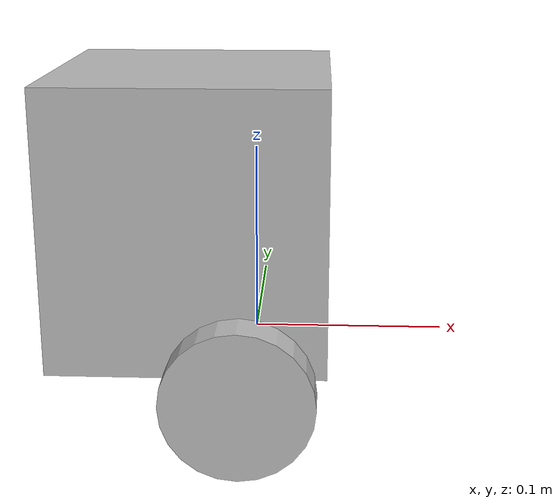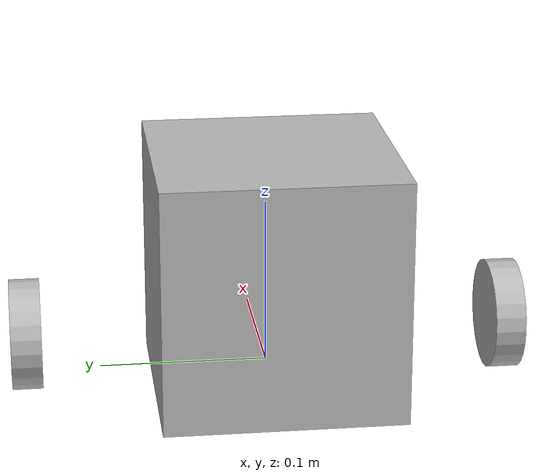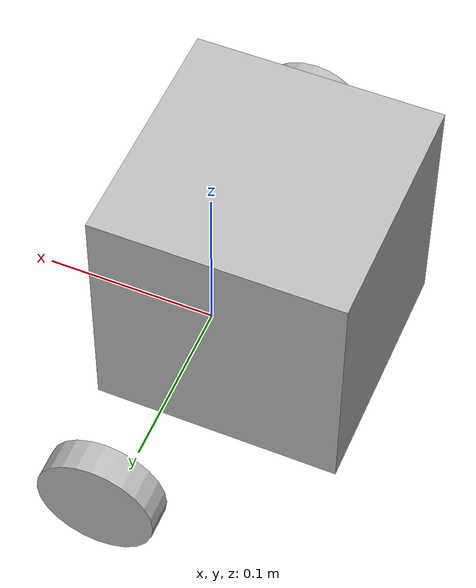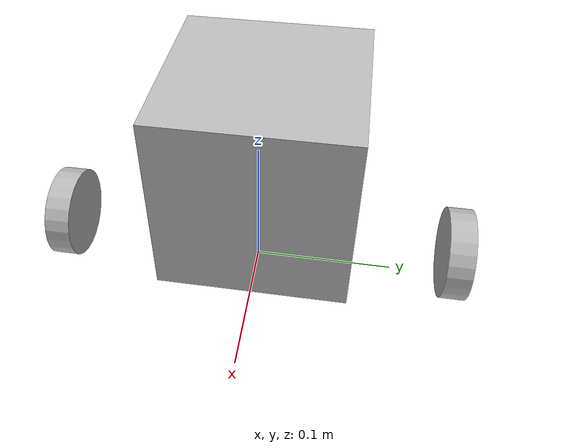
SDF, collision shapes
<?xml version="1.0" ?>
<sdf version="1.8">
  <model name="turtlebot3_waffle_pi">
    <pose>0 0 0.0 0 0 0</pose>

    <link name="base_footprint"/>

    <link name="base_link">
      <pose relative_to="base_footprint">0 0 0.0 0 0 0</pose>
      <inertial>
        <mass>1.3729</mass>
        <inertia>
          <ixx>0.008</ixx>
          <ixy>0.0</ixy>
          <ixz>0.0</ixz>
          <iyy>0.008</iyy>
          <iyz>0.0</iyz>
          <izz>0.01</izz>
        </inertia>
      </inertial>
      <collision name="base_collision">
        <pose>-0.032 0 0.070 0 0 0</pose>
        <geometry>
          <box>
            <size>0.140 0.140 0.143</size>
          </box>
        </geometry>
      </collision>
      <visual name="base_visual">
        <pose>-0.032 0 0 0 0 0</pose>
        <geometry>
          <mesh>
            <uri>package://turtlebot3_gazebo/models/turtlebot3_common/meshes/waffle_pi_base.dae</uri>
            <scale>0.001 0.001 0.001</scale>
          </mesh>
        </geometry>
      </visual>
    </link>

    <link name="wheel_left_link">
      <pose relative_to="base_link">0.0 0.144 0.023 1.57 0 0</pose>
      <inertial>
        <mass>0.1</mass>
        <inertia>
          <ixx>0.001</ixx>
          <ixy>0.0</ixy>
          <ixz>0.0</ixz>
          <iyy>0.001</iyy>
          <iyz>0.0</iyz>
          <izz>0.001</izz>
        </inertia>
      </inertial>
      <collision name="wheel_left_collision">
        <geometry>
          <cylinder>
            <radius>0.033</radius>
            <length>0.018</length>
          </cylinder>
        </geometry>
        <surface>
          <friction>
            <ode>
              <mu>0.8</mu>
              <mu2>0.8</mu2>
            </ode>
          </friction>
        </surface>
      </collision>
      <visual name="wheel_left_visual">
        <geometry>
          <mesh>
            <uri>package://turtlebot3_gazebo/models/turtlebot3_common/meshes/tire.dae</uri>
            <scale>0.001 0.001 0.001</scale>
          </mesh>
        </geometry>
      </visual>
    </link>

    <link name="wheel_right_link">
      <pose relative_to="base_link">0.0 -0.144 0.023 1.57 0 0</pose>
      <inertial>
        <mass>0.1</mass>
        <inertia>
          <ixx>0.001</ixx>
          <ixy>0.0</ixy>
          <ixz>0.0</ixz>
          <iyy>0.001</iyy>
          <iyz>0.0</iyz>
          <izz>0.001</izz>
        </inertia>
      </inertial>
      <collision name="wheel_right_collision">
        <geometry>
          <cylinder>
            <radius>0.033</radius>
            <length>0.018</length>
          </cylinder>
        </geometry>
        <surface>
          <friction>
            <ode>
              <mu>0.8</mu>
              <mu2>0.8</mu2>
            </ode>
          </friction>
        </surface>
      </collision>
      <visual name="wheel_right_visual">
        <geometry>
          <mesh>
            <uri>package://turtlebot3_gazebo/models/turtlebot3_common/meshes/tire.dae</uri>
            <scale>0.001 0.001 0.001</scale>
          </mesh>
        </geometry>
      </visual>
    </link>

    <joint name="base_joint" type="fixed">
      <parent>base_footprint</parent>
      <child>base_link</child>
    </joint>

    <joint name="wheel_left_joint" type="revolute">
      <parent>base_link</parent>
      <child>wheel_left_link</child>
      <axis>
        <xyz>0 0 1</xyz>
        <limit>
          <lower>-1.79769e+308</lower>
          <upper>1.79769e+308</upper>
        </limit>
      </axis>
    </joint>

    <joint name="wheel_right_joint" type="revolute">
      <parent>base_link</parent>
      <child>wheel_right_link</child>
      <axis>
        <xyz>0 0 1</xyz>
        <limit>
          <lower>-1.79769e+308</lower>
          <upper>1.79769e+308</upper>
        </limit>
      </axis>
    </joint>

    <!-- Differential Drive Plugin -->
    <plugin
      filename="gz-sim-diff-drive-system"
      name="gz::sim::systems::DiffDrive">
      <left_joint>wheel_left_joint</left_joint>
      <right_joint>wheel_right_joint</right_joint>
      <wheel_separation>0.287</wheel_separation>
      <wheel_radius>0.033</wheel_radius>
      <odom_publish_frequency>30</odom_publish_frequency>
      <topic>cmd_vel</topic>
      <frame_id>odom</frame_id>
      <child_frame_id>base_footprint</child_frame_id>
    </plugin>

  </model>
</sdf>
